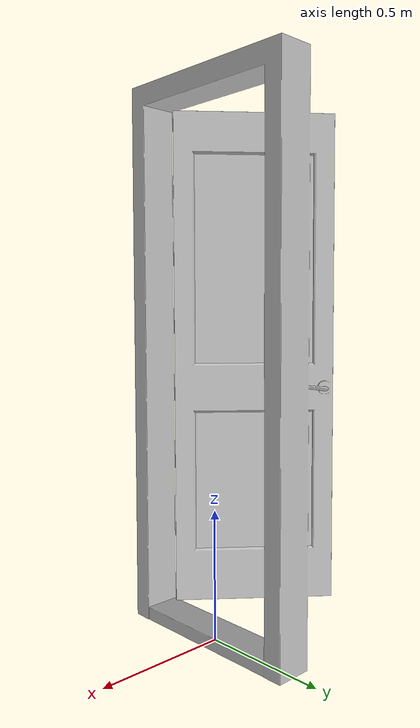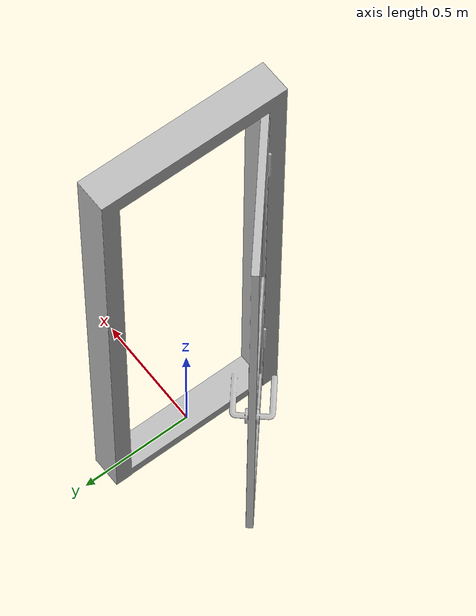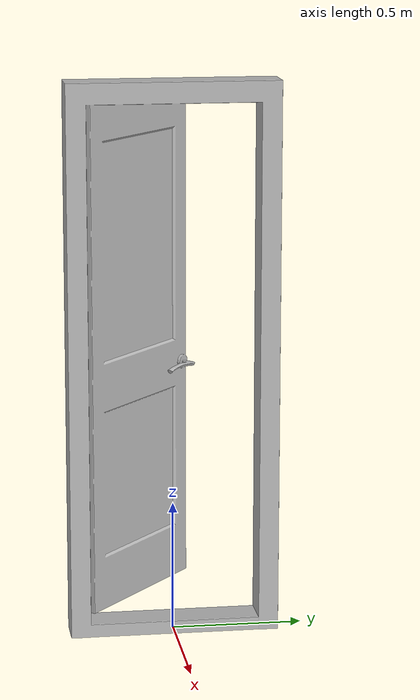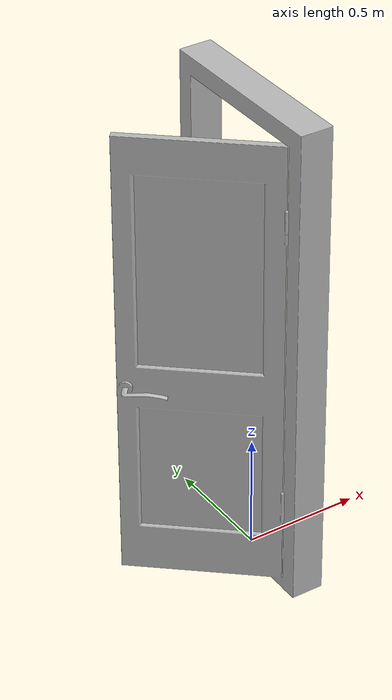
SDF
<?xml version='1.0'?>
<sdf version='1.4'>
  <model name='122'>
    <pose>0 0 0 0 0 0</pose>
    <static>true</static>
    <link name='link'>
      <collision name='collision'>
        <pose>0 0 0 0 0 0</pose>
        <geometry>
          <box>
            <size>0.650001 0.8 2</size>
          </box>
        </geometry>
      </collision>
      <visual name='visual'>
        <pose>0 0 0 0 0 0</pose>
        <geometry>
          <mesh><uri>model://122/122.dae</uri></mesh>
        </geometry>
      </visual>
    </link>
  </model>
</sdf>
